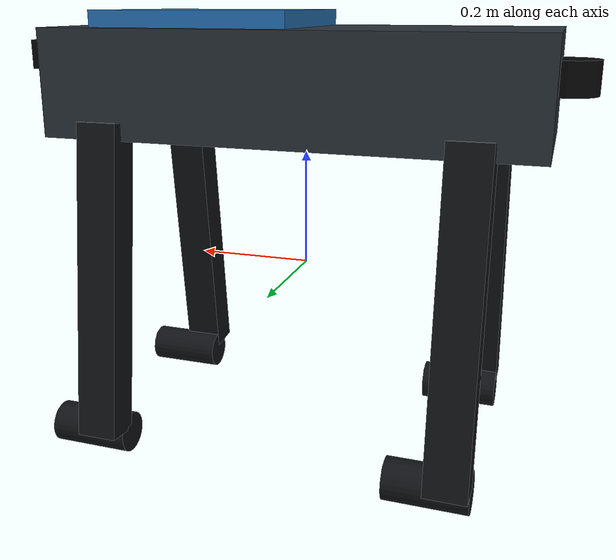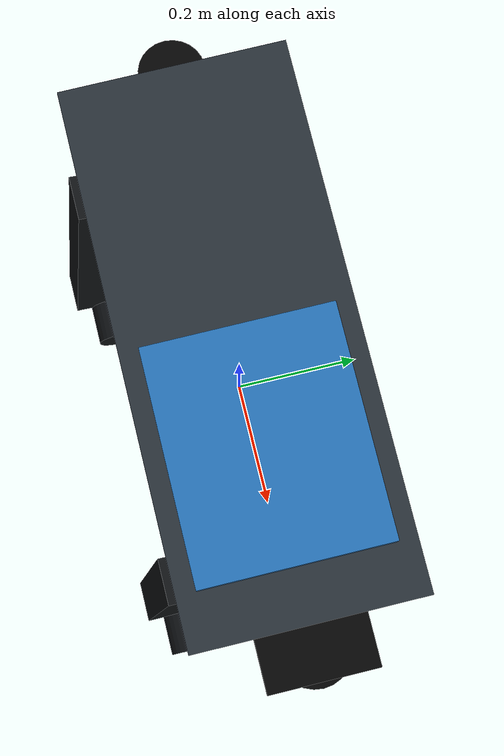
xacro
<?xml version="1.0"?>
<robot name="astrall_robot_dog">
  <material name="astrall_body">
    <color rgba="0.16 0.19 0.22 1.0"/>
  </material>
  <material name="astrall_panel">
    <color rgba="0.15 0.45 0.72 1.0"/>
  </material>
  <material name="astrall_limb">
    <color rgba="0.06 0.07 0.08 1.0"/>
  </material>
  <material name="astrall_sensor">
    <color rgba="0.02 0.02 0.02 1.0"/>
  </material>

  <link name="base_link">
    <visual>
      <origin xyz="0 0 0.32" rpy="0 0 0"/>
      <geometry>
        <box size="0.82 0.34 0.18"/>
      </geometry>
      <material name="astrall_body"/>
    </visual>
    <visual>
      <origin xyz="0.16 0 0.42" rpy="0 0 0"/>
      <geometry>
        <box size="0.34 0.28 0.035"/>
      </geometry>
      <material name="astrall_panel"/>
    </visual>
    <collision>
      <origin xyz="0 0 0.32" rpy="0 0 0"/>
      <geometry>
        <box size="0.82 0.34 0.18"/>
      </geometry>
    </collision>
    <inertial>
      <origin xyz="0 0 0.32" rpy="0 0 0"/>
      <mass value="20.0"/>
      <inertia ixx="0.35" ixy="0.0" ixz="0.0" iyy="1.2" iyz="0.0" izz="1.3"/>
    </inertial>
  </link>

  <link name="front_left_leg">
    <visual>
      <origin xyz="0 0 -0.27" rpy="0.12 0 0"/>
      <geometry>
        <box size="0.07 0.06 0.54"/>
      </geometry>
      <material name="astrall_limb"/>
    </visual>
    <collision>
      <origin xyz="0 0 -0.27" rpy="0.12 0 0"/>
      <geometry>
        <box size="0.07 0.06 0.54"/>
      </geometry>
    </collision>
  </link>
  <joint name="front_left_hip_fixed" type="fixed">
    <parent link="base_link"/>
    <child link="front_left_leg"/>
    <origin xyz="0.30 0.19 0.26" rpy="0 0 0"/>
  </joint>
  <link name="front_left_foot">
    <visual>
      <origin xyz="0.035 0 0" rpy="0 1.5708 0"/>
      <geometry>
        <cylinder radius="0.035" length="0.14"/>
      </geometry>
      <material name="astrall_limb"/>
    </visual>
  </link>
  <joint name="front_left_ankle_fixed" type="fixed">
    <parent link="front_left_leg"/>
    <child link="front_left_foot"/>
    <origin xyz="0 0 -0.55" rpy="0 0 0"/>
  </joint>

  <link name="front_right_leg">
    <visual>
      <origin xyz="0 0 -0.27" rpy="-0.12 0 0"/>
      <geometry>
        <box size="0.07 0.06 0.54"/>
      </geometry>
      <material name="astrall_limb"/>
    </visual>
    <collision>
      <origin xyz="0 0 -0.27" rpy="-0.12 0 0"/>
      <geometry>
        <box size="0.07 0.06 0.54"/>
      </geometry>
    </collision>
  </link>
  <joint name="front_right_hip_fixed" type="fixed">
    <parent link="base_link"/>
    <child link="front_right_leg"/>
    <origin xyz="0.30 -0.19 0.26" rpy="0 0 0"/>
  </joint>
  <link name="front_right_foot">
    <visual>
      <origin xyz="0.035 0 0" rpy="0 1.5708 0"/>
      <geometry>
        <cylinder radius="0.035" length="0.14"/>
      </geometry>
      <material name="astrall_limb"/>
    </visual>
  </link>
  <joint name="front_right_ankle_fixed" type="fixed">
    <parent link="front_right_leg"/>
    <child link="front_right_foot"/>
    <origin xyz="0 0 -0.55" rpy="0 0 0"/>
  </joint>

  <link name="rear_left_leg">
    <visual>
      <origin xyz="0 0 -0.27" rpy="0.12 0 0"/>
      <geometry>
        <box size="0.07 0.06 0.54"/>
      </geometry>
      <material name="astrall_limb"/>
    </visual>
    <collision>
      <origin xyz="0 0 -0.27" rpy="0.12 0 0"/>
      <geometry>
        <box size="0.07 0.06 0.54"/>
      </geometry>
    </collision>
  </link>
  <joint name="rear_left_hip_fixed" type="fixed">
    <parent link="base_link"/>
    <child link="rear_left_leg"/>
    <origin xyz="-0.30 0.19 0.26" rpy="0 0 0"/>
  </joint>
  <link name="rear_left_foot">
    <visual>
      <origin xyz="0.035 0 0" rpy="0 1.5708 0"/>
      <geometry>
        <cylinder radius="0.035" length="0.14"/>
      </geometry>
      <material name="astrall_limb"/>
    </visual>
  </link>
  <joint name="rear_left_ankle_fixed" type="fixed">
    <parent link="rear_left_leg"/>
    <child link="rear_left_foot"/>
    <origin xyz="0 0 -0.55" rpy="0 0 0"/>
  </joint>

  <link name="rear_right_leg">
    <visual>
      <origin xyz="0 0 -0.27" rpy="-0.12 0 0"/>
      <geometry>
        <box size="0.07 0.06 0.54"/>
      </geometry>
      <material name="astrall_limb"/>
    </visual>
    <collision>
      <origin xyz="0 0 -0.27" rpy="-0.12 0 0"/>
      <geometry>
        <box size="0.07 0.06 0.54"/>
      </geometry>
    </collision>
  </link>
  <joint name="rear_right_hip_fixed" type="fixed">
    <parent link="base_link"/>
    <child link="rear_right_leg"/>
    <origin xyz="-0.30 -0.19 0.26" rpy="0 0 0"/>
  </joint>
  <link name="rear_right_foot">
    <visual>
      <origin xyz="0.035 0 0" rpy="0 1.5708 0"/>
      <geometry>
        <cylinder radius="0.035" length="0.14"/>
      </geometry>
      <material name="astrall_limb"/>
    </visual>
  </link>
  <joint name="rear_right_ankle_fixed" type="fixed">
    <parent link="rear_right_leg"/>
    <child link="rear_right_foot"/>
    <origin xyz="0 0 -0.55" rpy="0 0 0"/>
  </joint>

  <link name="front_lidar_link">
    <visual>
      <origin xyz="0 0 0" rpy="0 0 0"/>
      <geometry>
        <cylinder radius="0.055" length="0.06"/>
      </geometry>
      <material name="astrall_sensor"/>
    </visual>
  </link>
  <joint name="front_lidar_fixed" type="fixed">
    <parent link="base_link"/>
    <child link="front_lidar_link"/>
    <origin xyz="0.444 0 0.288" rpy="0 0 0"/>
  </joint>

  <link name="rear_lidar_link">
    <visual>
      <origin xyz="0 0 0" rpy="0 0 0"/>
      <geometry>
        <cylinder radius="0.05" length="0.055"/>
      </geometry>
      <material name="astrall_sensor"/>
    </visual>
  </link>
  <joint name="rear_lidar_fixed" type="fixed">
    <parent link="base_link"/>
    <child link="rear_lidar_link"/>
    <origin xyz="-0.420 0 0.339" rpy="0 0 0"/>
  </joint>

  <link name="camera_link">
    <visual>
      <origin xyz="0 0 0" rpy="0 0 0"/>
      <geometry>
        <box size="0.08 0.16 0.05"/>
      </geometry>
      <material name="astrall_sensor"/>
    </visual>
  </link>
  <joint name="camera_fixed" type="fixed">
    <parent link="base_link"/>
    <child link="camera_link"/>
    <origin xyz="0.447 0 0.361" rpy="0 0 0"/>
  </joint>

  <link name="imu_link">
    <visual>
      <origin xyz="0 0 0" rpy="0 0 0"/>
      <geometry>
        <box size="0.05 0.04 0.02"/>
      </geometry>
      <material name="astrall_sensor"/>
    </visual>
  </link>
  <joint name="imu_fixed" type="fixed">
    <parent link="base_link"/>
    <child link="imu_link"/>
    <origin xyz="0.127 -0.085 0.402" rpy="0 0 0"/>
  </joint>
</robot>
